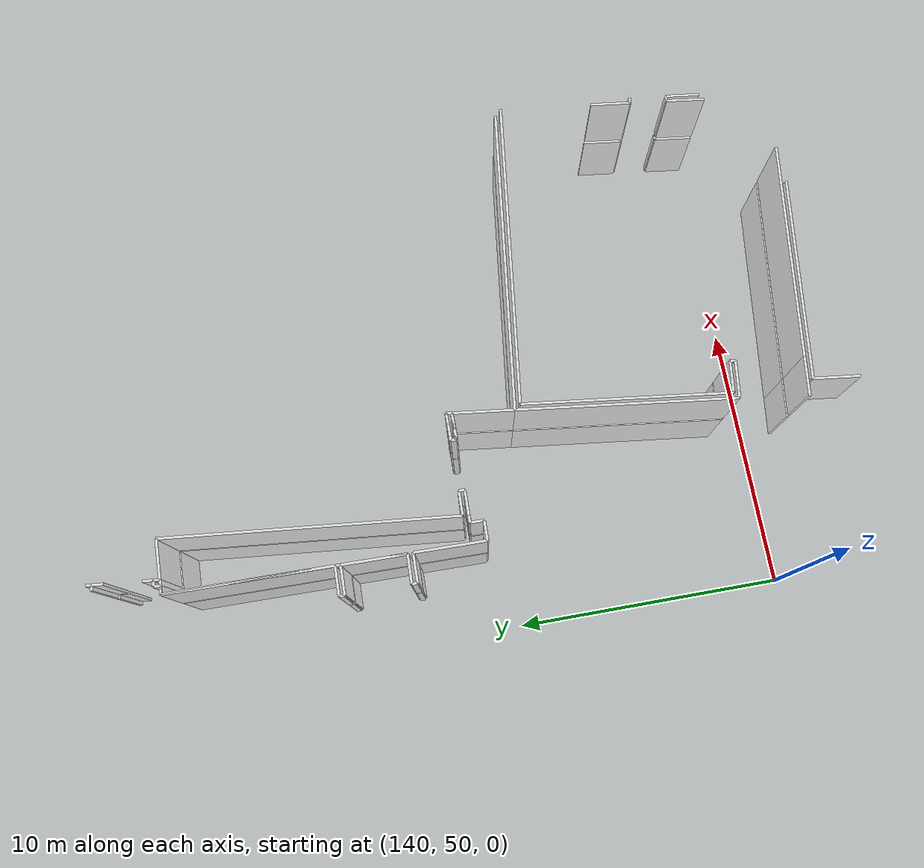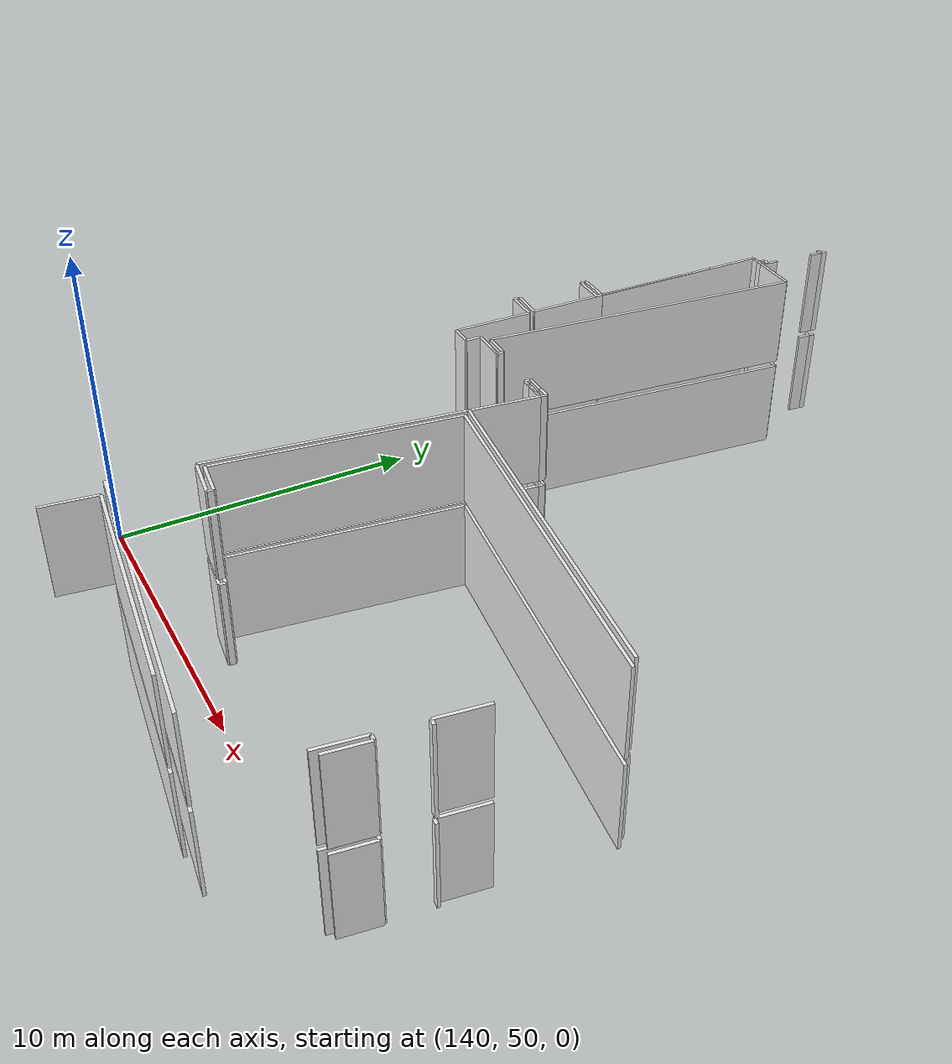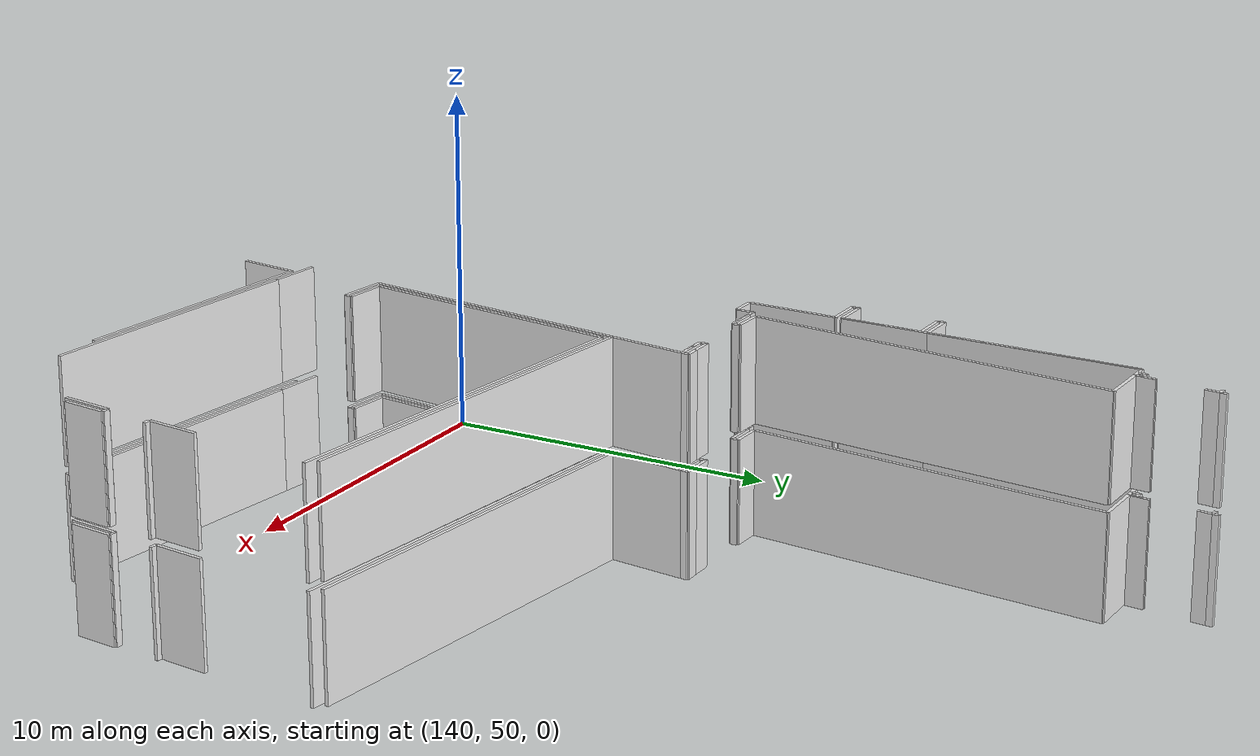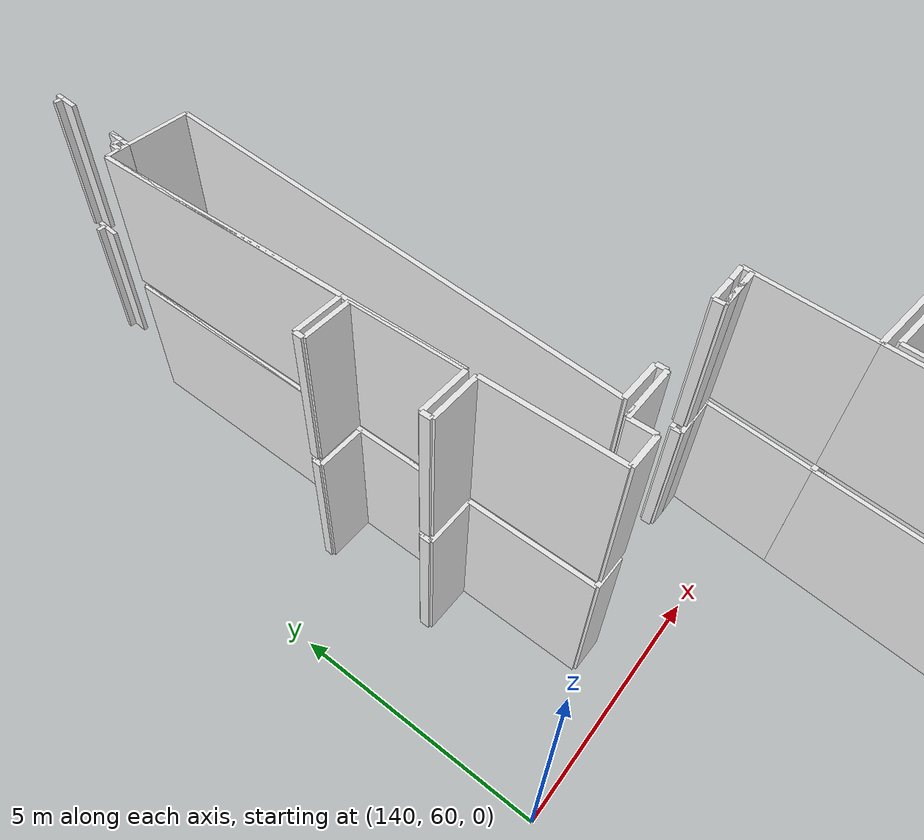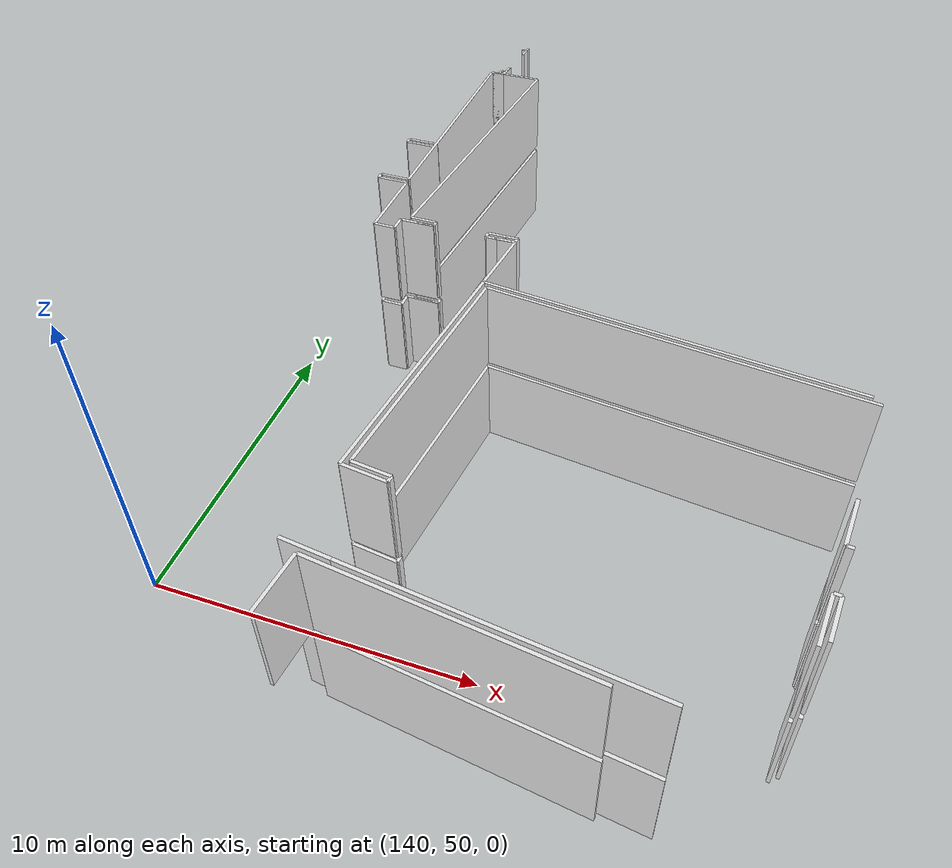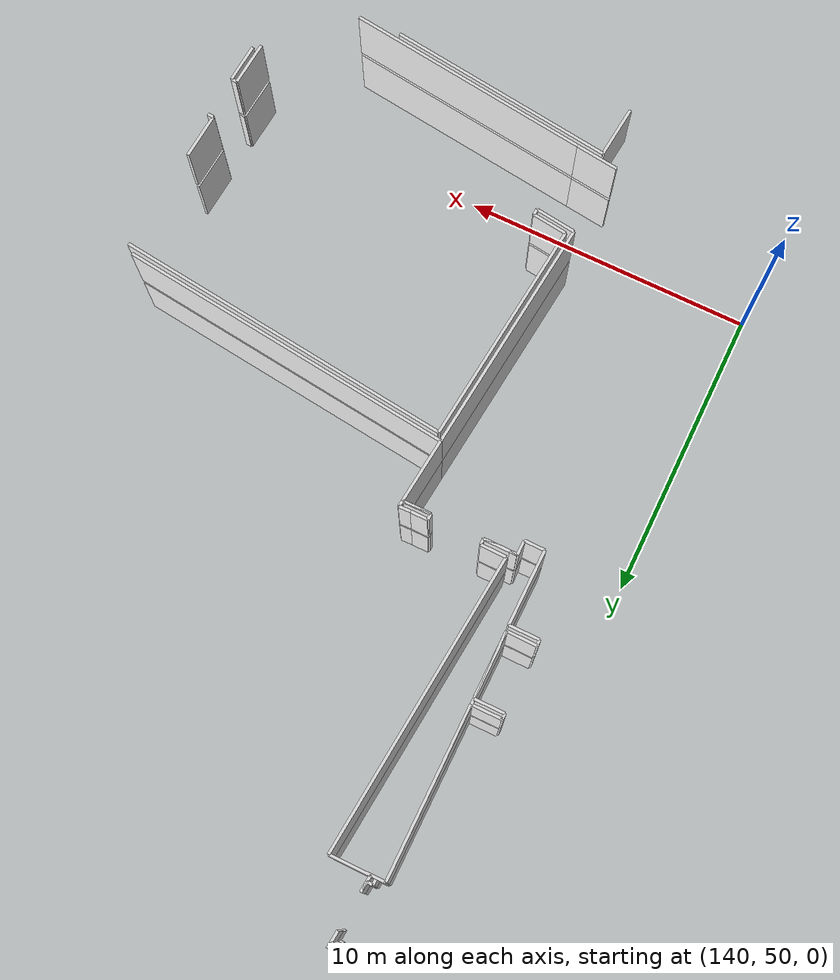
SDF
<sdf version="1.6">
 <world name="default">
  <model name="wall_150.1_48.1_0.0_link">
   <static>true</static>
   <pose>150.08499999999185 48.06499999994412 1.5 0 0 -0.11995117374483057</pose>
   <link name="link">
    <visual name="visual">
     <geometry><box><size>7.604643318400634 0.1 3</size></box></geometry>
     <material>
      <script><uri>file://media/materials/scripts/gazebo.material</uri><name>Gazebo/White</name></script>
     </material>
    </visual>
   </link>
  </model>
  <model name="wall_151.2_48.1_0.0_link">
   <static>true</static>
   <pose>151.21000000002095 48.13000000012107 1.5 0 0 3.021776205795211</pose>
   <link name="link">
    <visual name="visual">
     <geometry><box><size>8.198780397119496 0.1 3</size></box></geometry>
     <material>
      <script><uri>file://media/materials/scripts/gazebo.material</uri><name>Gazebo/White</name></script>
     </material>
    </visual>
   </link>
  </model>
  <model name="wall_147.5_51.2_0.0_link">
   <static>true</static>
   <pose>147.45000000001164 51.175000000046566 1.5 0 0 1.4659193879370842</pose>
   <link name="link">
    <visual name="visual">
     <geometry><box><size>0.19104973169180559 0.1 3</size></box></geometry>
     <material>
      <script><uri>file://media/materials/scripts/gazebo.material</uri><name>Gazebo/White</name></script>
     </material>
    </visual>
   </link>
  </model>
  <model name="wall_146.9_51.3_0.0_link">
   <static>true</static>
   <pose>146.88000000000466 51.34000000008382 1.5 0 0 3.0214839179154356</pose>
   <link name="link">
    <visual name="visual">
     <geometry><box><size>1.1684177335662667 0.1 3</size></box></geometry>
     <material>
      <script><uri>file://media/materials/scripts/gazebo.material</uri><name>Gazebo/White</name></script>
     </material>
    </visual>
   </link>
  </model>
  <model name="wall_146.8_55.2_0.0_link">
   <static>true</static>
   <pose>146.75500000000466 55.16500000003725 1.5 0 0 1.4502124243818328</pose>
   <link name="link">
    <visual name="visual">
     <geometry><box><size>7.564932253279079 0.1 3</size></box></geometry>
     <material>
      <script><uri>file://media/materials/scripts/gazebo.material</uri><name>Gazebo/White</name></script>
     </material>
    </visual>
   </link>
  </model>
  <model name="wall_152.9_58.2_0.0_link">
   <static>true</static>
   <pose>152.92500000001746 58.22999999998137 1.5 0 0 -0.12015333859032509</pose>
   <link name="link">
    <visual name="visual">
     <geometry><box><size>11.513005689199145 0.1 3</size></box></geometry>
     <material>
      <script><uri>file://media/materials/scripts/gazebo.material</uri><name>Gazebo/White</name></script>
     </material>
    </visual>
   </link>
  </model>
  <model name="wall_158.1_53.4_0.0_link">
   <static>true</static>
   <pose>158.13999999998487 53.389999999897555 1.5 0 0 -1.6918235466009592</pose>
   <link name="link">
    <visual name="visual">
     <geometry><box><size>1.4909057649436974 0.1 3</size></box></geometry>
     <material>
      <script><uri>file://media/materials/scripts/gazebo.material</uri><name>Gazebo/White</name></script>
     </material>
    </visual>
   </link>
  </model>
  <model name="wall_158.1_52.6_0.0_link">
   <static>true</static>
   <pose>158.14999999999418 52.639999999897555 1.5 0 0 -0.09966865257760905</pose>
   <link name="link">
    <visual name="visual">
     <geometry><box><size>0.20099751243585498 0.1 3</size></box></geometry>
     <material>
      <script><uri>file://media/materials/scripts/gazebo.material</uri><name>Gazebo/White</name></script>
     </material>
    </visual>
   </link>
  </model>
  <model name="wall_158.0_51.3_0.0_link">
   <static>true</static>
   <pose>157.98500000001513 51.26000000000931 1.5 0 0 3.0367157147638757</pose>
   <link name="link">
    <visual name="visual">
     <geometry><box><size>0.19104973174969345 0.1 3</size></box></geometry>
     <material>
      <script><uri>file://media/materials/scripts/gazebo.material</uri><name>Gazebo/White</name></script>
     </material>
    </visual>
   </link>
  </model>
  <model name="wall_157.8_50.6_0.0_link">
   <static>true</static>
   <pose>157.80000000001746 50.55499999993481 1.5 0 0 -1.6960119063078065</pose>
   <link name="link">
    <visual name="visual">
     <geometry><box><size>1.4412841498042397 0.1 3</size></box></geometry>
     <material>
      <script><uri>file://media/materials/scripts/gazebo.material</uri><name>Gazebo/White</name></script>
     </material>
    </visual>
   </link>
  </model>
  <model name="wall_158.0_50.6_0.0_link">
   <static>true</static>
   <pose>158.00500000000466 50.62999999988824 1.5 0 0 -1.6911791475924711</pose>
   <link name="link">
    <visual name="visual">
     <geometry><box><size>1.2490396313013081 0.1 3</size></box></geometry>
     <material>
      <script><uri>file://media/materials/scripts/gazebo.material</uri><name>Gazebo/White</name></script>
     </material>
    </visual>
   </link>
  </model>
  <model name="wall_142.2_63.7_0.0_link">
   <static>true</static>
   <pose>142.2049999999872 63.670000000158325 1.5 0 0 -0.01941503592096556</pose>
   <link name="link">
    <visual name="visual">
     <geometry><box><size>1.0301941564279975 0.1 3</size></box></geometry>
     <material>
      <script><uri>file://media/materials/scripts/gazebo.material</uri><name>Gazebo/White</name></script>
     </material>
    </visual>
   </link>
  </model>
  <model name="wall_142.7_64.8_0.0_link">
   <static>true</static>
   <pose>142.73499999998603 64.81000000005588 1.5 0 0 1.5577535881510873</pose>
   <link name="link">
    <visual name="visual">
     <geometry><box><size>2.3001956436670468 0.1 3</size></box></geometry>
     <material>
      <script><uri>file://media/materials/scripts/gazebo.material</uri><name>Gazebo/White</name></script>
     </material>
    </visual>
   </link>
  </model>
  <model name="wall_142.2_66.0_0.0_link">
   <static>true</static>
   <pose>142.23000000001048 65.96500000008382 1.5 0 0 3.131977565057088</pose>
   <link name="link">
    <visual name="visual">
     <geometry><box><size>1.0400480757932573 0.1 3</size></box></geometry>
     <material>
      <script><uri>file://media/materials/scripts/gazebo.material</uri><name>Gazebo/White</name></script>
     </material>
    </visual>
   </link>
  </model>
  <model name="wall_141.7_66.1_0.0_link">
   <static>true</static>
   <pose>141.7149999999965 66.06500000017695 1.5 0 0 1.5182132654251468</pose>
   <link name="link">
    <visual name="visual">
     <geometry><box><size>0.19026297584603252 0.1 3</size></box></geometry>
     <material>
      <script><uri>file://media/materials/scripts/gazebo.material</uri><name>Gazebo/White</name></script>
     </material>
    </visual>
   </link>
  </model>
  <model name="wall_142.2_66.2_0.0_link">
   <static>true</static>
   <pose>142.2399999999907 66.15500000002794 1.5 0 0 -0.009615088532167242</pose>
   <link name="link">
    <visual name="visual">
     <geometry><box><size>1.0400480758514623 0.1 3</size></box></geometry>
     <material>
      <script><uri>file://media/materials/scripts/gazebo.material</uri><name>Gazebo/White</name></script>
     </material>
    </visual>
   </link>
  </model>
  <model name="wall_142.8_69.1_0.0_link">
   <static>true</static>
   <pose>142.7950000000128 69.10499999998137 1.5 0 0 1.5589525489794016</pose>
   <link name="link">
    <visual name="visual">
     <geometry><box><size>5.910414537218375 0.1 3</size></box></geometry>
     <material>
      <script><uri>file://media/materials/scripts/gazebo.material</uri><name>Gazebo/White</name></script>
     </material>
    </visual>
   </link>
  </model>
  <model name="wall_143.0_72.1_0.0_link">
   <static>true</static>
   <pose>142.98000000001048 72.06000000005588 1.5 0 0 0.0</pose>
   <link name="link">
    <visual name="visual">
     <geometry><box><size>0.29999999998835847 0.1 3</size></box></geometry>
     <material>
      <script><uri>file://media/materials/scripts/gazebo.material</uri><name>Gazebo/White</name></script>
     </material>
    </visual>
   </link>
  </model>
  <model name="wall_143.1_72.2_0.0_link">
   <static>true</static>
   <pose>143.14000000001397 72.17999999993481 1.5 0 0 1.4876550947458824</pose>
   <link name="link">
    <visual name="visual">
     <geometry><box><size>0.24083189133608532 0.1 3</size></box></geometry>
     <material>
      <script><uri>file://media/materials/scripts/gazebo.material</uri><name>Gazebo/White</name></script>
     </material>
    </visual>
   </link>
  </model>
  <model name="wall_143.2_72.3_0.0_link">
   <static>true</static>
   <pose>143.25 72.28999999980442 1.5 0 0 -0.09966865260642473</pose>
   <link name="link">
    <visual name="visual">
     <geometry><box><size>0.20099751237793617 0.1 3</size></box></geometry>
     <material>
      <script><uri>file://media/materials/scripts/gazebo.material</uri><name>Gazebo/White</name></script>
     </material>
    </visual>
   </link>
  </model>
  <model name="wall_143.4_72.5_0.0_link">
   <static>true</static>
   <pose>143.36999999999534 72.45999999996275 1.5 0 0 1.460139105621001</pose>
   <link name="link">
    <visual name="visual">
     <geometry><box><size>0.36221540586283607 0.1 3</size></box></geometry>
     <material>
      <script><uri>file://media/materials/scripts/gazebo.material</uri><name>Gazebo/White</name></script>
     </material>
    </visual>
   </link>
  </model>
  <model name="wall_143.5_74.2_0.0_link">
   <static>true</static>
   <pose>143.54000000000815 74.15500000002794 1.5 0 0 1.4735431285193206</pose>
   <link name="link">
    <visual name="visual">
     <geometry><box><size>0.41194659816373147 0.1 3</size></box></geometry>
     <material>
      <script><uri>file://media/materials/scripts/gazebo.material</uri><name>Gazebo/White</name></script>
     </material>
    </visual>
   </link>
  </model>
  <model name="wall_143.5_74.4_0.0_link">
   <static>true</static>
   <pose>143.45999999999185 74.36499999999069 1.5 0 0 3.0916342566630535</pose>
   <link name="link">
    <visual name="visual">
     <geometry><box><size>0.20024984396872697 0.1 3</size></box></geometry>
     <material>
      <script><uri>file://media/materials/scripts/gazebo.material</uri><name>Gazebo/White</name></script>
     </material>
    </visual>
   </link>
  </model>
  <model name="wall_146.5_61.3_0.0_link">
   <static>true</static>
   <pose>146.5349999999744 61.34499999997206 1.5 0 0 -0.02702044984156988</pose>
   <link name="link">
    <visual name="visual">
     <geometry><box><size>0.37013511046832204 0.1 3</size></box></geometry>
     <material>
      <script><uri>file://media/materials/scripts/gazebo.material</uri><name>Gazebo/White</name></script>
     </material>
    </visual>
   </link>
  </model>
  <model name="wall_147.0_61.3_0.0_link">
   <static>true</static>
   <pose>147.01499999998487 61.34499999997206 1.5 0 0 0.016947530215964846</pose>
   <link name="link">
    <visual name="visual">
     <geometry><box><size>0.5900847397069884 0.1 3</size></box></geometry>
     <material>
      <script><uri>file://media/materials/scripts/gazebo.material</uri><name>Gazebo/White</name></script>
     </material>
    </visual>
   </link>
  </model>
  <model name="wall_147.2_60.2_0.0_link">
   <static>true</static>
   <pose>147.17499999998836 60.24500000011176 1.5 0 0 -1.6923658132359836</pose>
   <link name="link">
    <visual name="visual">
     <geometry><box><size>2.226432123341154 0.1 3</size></box></geometry>
     <material>
      <script><uri>file://media/materials/scripts/gazebo.material</uri><name>Gazebo/White</name></script>
     </material>
    </visual>
   </link>
  </model>
  <model name="wall_146.6_55.2_0.0_link">
   <static>true</static>
   <pose>146.55999999999767 55.19500000006519 1.5 0 0 -1.6918741795088168</pose>
   <link name="link">
    <visual name="visual">
     <geometry><box><size>7.9481884729783525 0.1 3</size></box></geometry>
     <material>
      <script><uri>file://media/materials/scripts/gazebo.material</uri><name>Gazebo/White</name></script>
     </material>
    </visual>
   </link>
  </model>
  <model name="wall_146.8_51.2_0.0_link">
   <static>true</static>
   <pose>146.7600000000093 51.16500000003725 1.5 0 0 -0.12435499449408483</pose>
   <link name="link">
    <visual name="visual">
     <geometry><box><size>1.37058381718765 0.1 3</size></box></geometry>
     <material>
      <script><uri>file://media/materials/scripts/gazebo.material</uri><name>Gazebo/White</name></script>
     </material>
    </visual>
   </link>
  </model>
  <model name="wall_146.4_48.7_0.0_link">
   <static>true</static>
   <pose>146.42500000001746 48.705000000074506 1.5 0 0 3.0232668711350636</pose>
   <link name="link">
    <visual name="visual">
     <geometry><box><size>1.440069442754304 0.1 3</size></box></geometry>
     <material>
      <script><uri>file://media/materials/scripts/gazebo.material</uri><name>Gazebo/White</name></script>
     </material>
    </visual>
   </link>
  </model>
  <model name="wall_141.7_63.6_0.0_link">
   <static>true</static>
   <pose>141.69000000000233 63.580000000074506 1.5 0 0 -1.5707963267948966</pose>
   <link name="link">
    <visual name="visual">
     <geometry><box><size>0.20000000018626451 0.1 3</size></box></geometry>
     <material>
      <script><uri>file://media/materials/scripts/gazebo.material</uri><name>Gazebo/White</name></script>
     </material>
    </visual>
   </link>
  </model>
  <model name="wall_142.2_63.5_0.0_link">
   <static>true</static>
   <pose>142.20999999999185 63.47500000009313 1.5 0 0 -0.00961508808499551</pose>
   <link name="link">
    <visual name="visual">
     <geometry><box><size>1.04004807578878 0.1 3</size></box></geometry>
     <material>
      <script><uri>file://media/materials/scripts/gazebo.material</uri><name>Gazebo/White</name></script>
     </material>
    </visual>
   </link>
  </model>
  <model name="wall_142.7_62.2_0.0_link">
   <static>true</static>
   <pose>142.70999999999185 62.18500000005588 1.5 0 0 -1.5863592725219522</pose>
   <link name="link">
    <visual name="visual">
     <geometry><box><size>2.570311265494933 0.1 3</size></box></geometry>
     <material>
      <script><uri>file://media/materials/scripts/gazebo.material</uri><name>Gazebo/White</name></script>
     </material>
    </visual>
   </link>
  </model>
  <model name="wall_143.0_60.9_0.0_link">
   <static>true</static>
   <pose>143.04000000000815 60.89500000001863 1.5 0 0 -0.014284742267913651</pose>
   <link name="link">
    <visual name="visual">
     <geometry><box><size>0.7000714249359331 0.1 3</size></box></geometry>
     <material>
      <script><uri>file://media/materials/scripts/gazebo.material</uri><name>Gazebo/White</name></script>
     </material>
    </visual>
   </link>
  </model>
  <model name="wall_143.4_61.1_0.0_link">
   <static>true</static>
   <pose>143.39500000001863 61.13500000000931 1.5 0 0 1.550390996079279</pose>
   <link name="link">
    <visual name="visual">
     <geometry><box><size>0.4901020299518104 0.1 3</size></box></geometry>
     <material>
      <script><uri>file://media/materials/scripts/gazebo.material</uri><name>Gazebo/White</name></script>
     </material>
    </visual>
   </link>
  </model>
  <model name="wall_143.5_61.4_0.0_link">
   <static>true</static>
   <pose>143.52500000002328 61.37999999988824 1.5 0 0 0.0</pose>
   <link name="link">
    <visual name="visual">
     <geometry><box><size>0.25 0.1 3</size></box></geometry>
     <material>
      <script><uri>file://media/materials/scripts/gazebo.material</uri><name>Gazebo/White</name></script>
     </material>
    </visual>
   </link>
  </model>
  <model name="wall_144.1_61.4_0.0_link">
   <static>true</static>
   <pose>144.10000000000582 61.375 1.5 0 0 -0.011110653649716558</pose>
   <link name="link">
    <visual name="visual">
     <geometry><box><size>0.9000555538035779 0.1 3</size></box></geometry>
     <material>
      <script><uri>file://media/materials/scripts/gazebo.material</uri><name>Gazebo/White</name></script>
     </material>
    </visual>
   </link>
  </model>
  <model name="wall_152.7_58.5_0.0_link">
   <static>true</static>
   <pose>152.7149999999965 58.45999999996275 1.5 0 0 3.022337441191368</pose>
   <link name="link">
    <visual name="visual">
     <geometry><box><size>11.431189789418454 0.1 3</size></box></geometry>
     <material>
      <script><uri>file://media/materials/scripts/gazebo.material</uri><name>Gazebo/White</name></script>
     </material>
    </visual>
   </link>
  </model>
  <model name="wall_147.3_61.4_0.0_link">
   <static>true</static>
   <pose>147.32500000001164 61.449999999953434 1.5 0 0 1.4219063788438384</pose>
   <link name="link">
    <visual name="visual">
     <geometry><box><size>0.2022374838894058 0.1 3</size></box></geometry>
     <material>
      <script><uri>file://media/materials/scripts/gazebo.material</uri><name>Gazebo/White</name></script>
     </material>
    </visual>
   </link>
  </model>
  <model name="wall_147.1_61.5_0.0_link">
   <static>true</static>
   <pose>147.14000000001397 61.544999999925494 1.5 0 0 -3.116597860530772</pose>
   <link name="link">
    <visual name="visual">
     <geometry><box><size>0.40012498049254075 0.1 3</size></box></geometry>
     <material>
      <script><uri>file://media/materials/scripts/gazebo.material</uri><name>Gazebo/White</name></script>
     </material>
    </visual>
   </link>
  </model>
  <model name="wall_146.6_61.5_0.0_link">
   <static>true</static>
   <pose>146.64499999998952 61.544999999925494 1.5 0 0 3.1246451241628583</pose>
   <link name="link">
    <visual name="visual">
     <geometry><box><size>0.590084739699097 0.1 3</size></box></geometry>
     <material>
      <script><uri>file://media/materials/scripts/gazebo.material</uri><name>Gazebo/White</name></script>
     </material>
    </visual>
   </link>
  </model>
  <model name="wall_146.3_61.4_0.0_link">
   <static>true</static>
   <pose>146.34999999997672 61.449999999953434 1.5 0 0 -1.5707963267948966</pose>
   <link name="link">
    <visual name="visual">
     <geometry><box><size>0.19999999972060323 0.1 3</size></box></geometry>
     <material>
      <script><uri>file://media/materials/scripts/gazebo.material</uri><name>Gazebo/White</name></script>
     </material>
    </visual>
   </link>
  </model>
  <model name="wall_144.5_61.5_0.0_link">
   <static>true</static>
   <pose>144.54999999998836 61.46999999997206 1.5 0 0 1.5707963267948966</pose>
   <link name="link">
    <visual name="visual">
     <geometry><box><size>0.19999999972060323 0.1 3</size></box></geometry>
     <material>
      <script><uri>file://media/materials/scripts/gazebo.material</uri><name>Gazebo/White</name></script>
     </material>
    </visual>
   </link>
  </model>
  <model name="wall_144.1_61.6_0.0_link">
   <static>true</static>
   <pose>144.1149999999907 61.579999999841675 1.5 0 0 3.1186081961268197</pose>
   <link name="link">
    <visual name="visual">
     <geometry><box><size>0.8702298546893473 0.1 3</size></box></geometry>
     <material>
      <script><uri>file://media/materials/scripts/gazebo.material</uri><name>Gazebo/White</name></script>
     </material>
    </visual>
   </link>
  </model>
  <model name="wall_144.2_66.8_0.0_link">
   <static>true</static>
   <pose>144.20999999999185 66.81499999994412 1.5 0 0 1.469706682461873</pose>
   <link name="link">
    <visual name="visual">
     <geometry><box><size>10.503623184591495 0.1 3</size></box></geometry>
     <material>
      <script><uri>file://media/materials/scripts/gazebo.material</uri><name>Gazebo/White</name></script>
     </material>
    </visual>
   </link>
  </model>
  <model name="wall_144.0_72.1_0.0_link">
   <static>true</static>
   <pose>144.0350000000035 72.05000000004657 1.5 0 0 3.1274092075850195</pose>
   <link name="link">
    <visual name="visual">
     <geometry><box><size>1.4101418368123546 0.1 3</size></box></geometry>
     <material>
      <script><uri>file://media/materials/scripts/gazebo.material</uri><name>Gazebo/White</name></script>
     </material>
    </visual>
   </link>
  </model>
  <model name="wall_143.3_72.2_0.0_link">
   <static>true</static>
   <pose>143.3399999999965 72.1699999999255 1.5 0 0 1.4801364396657184</pose>
   <link name="link">
    <visual name="visual">
     <geometry><box><size>0.22090722008046232 0.1 3</size></box></geometry>
     <material>
      <script><uri>file://media/materials/scripts/gazebo.material</uri><name>Gazebo/White</name></script>
     </material>
    </visual>
   </link>
  </model>
  <model name="wall_143.6_74.5_0.0_link">
   <static>true</static>
   <pose>143.57000000000698 74.45499999984168 1.5 0 0 1.4659193879370842</pose>
   <link name="link">
    <visual name="visual">
     <geometry><box><size>0.19104973169180559 0.1 3</size></box></geometry>
     <material>
      <script><uri>file://media/materials/scripts/gazebo.material</uri><name>Gazebo/White</name></script>
     </material>
    </visual>
   </link>
  </model>
  <model name="wall_144.0_61.4_0.0_link">
   <static>true</static>
   <pose>143.97500000000582 61.375 1.5 0 0 -0.008695432817694347</pose>
   <link name="link">
    <visual name="visual">
     <geometry><box><size>1.1500434774021384 0.1 3</size></box></geometry>
     <material>
      <script><uri>file://media/materials/scripts/gazebo.material</uri><name>Gazebo/White</name></script>
     </material>
    </visual>
   </link>
  </model>
  <model name="wall_146.8_61.4_0.0_link">
   <static>true</static>
   <pose>146.8299999999872 61.35000000009313 1.5 0 0 0.0</pose>
   <link name="link">
    <visual name="visual">
     <geometry><box><size>0.9600000000209548 0.1 3</size></box></geometry>
     <material>
      <script><uri>file://media/materials/scripts/gazebo.material</uri><name>Gazebo/White</name></script>
     </material>
    </visual>
   </link>
  </model>
  <model name="wall_143.4_72.4_0.0_link">
   <static>true</static>
   <pose>143.36000000001513 72.35000000009313 1.5 0 0 -1.673877935300477</pose>
   <link name="link">
    <visual name="visual">
     <geometry><box><size>0.5830951895584008 0.1 3</size></box></geometry>
     <material>
      <script><uri>file://media/materials/scripts/gazebo.material</uri><name>Gazebo/White</name></script>
     </material>
    </visual>
   </link>
  </model>
  <model name="wall_143.1_72.1_0.0_link">
   <static>true</static>
   <pose>143.0800000000163 72.06000000005588 1.5 0 0 3.141592653589793</pose>
   <link name="link">
    <visual name="visual">
     <geometry><box><size>0.5 0.1 3</size></box></geometry>
     <material>
      <script><uri>file://media/materials/scripts/gazebo.material</uri><name>Gazebo/White</name></script>
     </material>
    </visual>
   </link>
  </model>
  <model name="wall_142.8_67.9_0.0_link">
   <static>true</static>
   <pose>142.77499999999418 67.86000000010245 1.5 0 0 -1.5838908164257817</pose>
   <link name="link">
    <visual name="visual">
     <geometry><box><size>8.400720207127787 0.1 3</size></box></geometry>
     <material>
      <script><uri>file://media/materials/scripts/gazebo.material</uri><name>Gazebo/White</name></script>
     </material>
    </visual>
   </link>
  </model>
  <model name="wall_146.2_47.7_3.2_link">
   <static>true</static>
   <pose>146.20999999999185 47.675000000046566 4.7 0 0 1.4530010049136584</pose>
   <link name="link">
    <visual name="visual">
     <geometry><box><size>1.7017931718677757 0.1 3</size></box></geometry>
     <material>
      <script><uri>file://media/materials/scripts/gazebo.material</uri><name>Gazebo/White</name></script>
     </material>
    </visual>
   </link>
  </model>
  <model name="wall_150.1_48.1_3.2_link">
   <static>true</static>
   <pose>150.08499999999185 48.06499999994412 4.7 0 0 -0.11995117374483057</pose>
   <link name="link">
    <visual name="visual">
     <geometry><box><size>7.604643318400634 0.1 3</size></box></geometry>
     <material>
      <script><uri>file://media/materials/scripts/gazebo.material</uri><name>Gazebo/White</name></script>
     </material>
    </visual>
   </link>
  </model>
  <model name="wall_151.2_48.1_3.2_link">
   <static>true</static>
   <pose>151.21000000002095 48.13000000012107 4.7 0 0 3.021776205795211</pose>
   <link name="link">
    <visual name="visual">
     <geometry><box><size>8.198780397119496 0.1 3</size></box></geometry>
     <material>
      <script><uri>file://media/materials/scripts/gazebo.material</uri><name>Gazebo/White</name></script>
     </material>
    </visual>
   </link>
  </model>
  <model name="wall_147.5_51.2_3.2_link">
   <static>true</static>
   <pose>147.45000000001164 51.175000000046566 4.7 0 0 1.4659193879370842</pose>
   <link name="link">
    <visual name="visual">
     <geometry><box><size>0.19104973169180559 0.1 3</size></box></geometry>
     <material>
      <script><uri>file://media/materials/scripts/gazebo.material</uri><name>Gazebo/White</name></script>
     </material>
    </visual>
   </link>
  </model>
  <model name="wall_146.9_51.3_3.2_link">
   <static>true</static>
   <pose>146.88000000000466 51.34000000008382 4.7 0 0 3.0214839179154356</pose>
   <link name="link">
    <visual name="visual">
     <geometry><box><size>1.1684177335662667 0.1 3</size></box></geometry>
     <material>
      <script><uri>file://media/materials/scripts/gazebo.material</uri><name>Gazebo/White</name></script>
     </material>
    </visual>
   </link>
  </model>
  <model name="wall_146.8_55.2_3.2_link">
   <static>true</static>
   <pose>146.75500000000466 55.16500000003725 4.7 0 0 1.4502124243818328</pose>
   <link name="link">
    <visual name="visual">
     <geometry><box><size>7.564932253279079 0.1 3</size></box></geometry>
     <material>
      <script><uri>file://media/materials/scripts/gazebo.material</uri><name>Gazebo/White</name></script>
     </material>
    </visual>
   </link>
  </model>
  <model name="wall_152.9_58.2_3.2_link">
   <static>true</static>
   <pose>152.92500000001746 58.22999999998137 4.7 0 0 -0.12015333859032509</pose>
   <link name="link">
    <visual name="visual">
     <geometry><box><size>11.513005689199145 0.1 3</size></box></geometry>
     <material>
      <script><uri>file://media/materials/scripts/gazebo.material</uri><name>Gazebo/White</name></script>
     </material>
    </visual>
   </link>
  </model>
  <model name="wall_158.1_53.4_3.2_link">
   <static>true</static>
   <pose>158.13999999998487 53.389999999897555 4.7 0 0 -1.6918235466009592</pose>
   <link name="link">
    <visual name="visual">
     <geometry><box><size>1.4909057649436974 0.1 3</size></box></geometry>
     <material>
      <script><uri>file://media/materials/scripts/gazebo.material</uri><name>Gazebo/White</name></script>
     </material>
    </visual>
   </link>
  </model>
  <model name="wall_158.1_52.6_3.2_link">
   <static>true</static>
   <pose>158.14999999999418 52.639999999897555 4.7 0 0 -0.09966865257760905</pose>
   <link name="link">
    <visual name="visual">
     <geometry><box><size>0.20099751243585498 0.1 3</size></box></geometry>
     <material>
      <script><uri>file://media/materials/scripts/gazebo.material</uri><name>Gazebo/White</name></script>
     </material>
    </visual>
   </link>
  </model>
  <model name="wall_158.0_51.3_3.2_link">
   <static>true</static>
   <pose>157.98500000001513 51.26000000000931 4.7 0 0 3.0367157147638757</pose>
   <link name="link">
    <visual name="visual">
     <geometry><box><size>0.19104973174969345 0.1 3</size></box></geometry>
     <material>
      <script><uri>file://media/materials/scripts/gazebo.material</uri><name>Gazebo/White</name></script>
     </material>
    </visual>
   </link>
  </model>
  <model name="wall_157.8_50.6_3.2_link">
   <static>true</static>
   <pose>157.80000000001746 50.55499999993481 4.7 0 0 -1.6960119063078065</pose>
   <link name="link">
    <visual name="visual">
     <geometry><box><size>1.4412841498042397 0.1 3</size></box></geometry>
     <material>
      <script><uri>file://media/materials/scripts/gazebo.material</uri><name>Gazebo/White</name></script>
     </material>
    </visual>
   </link>
  </model>
  <model name="wall_158.0_50.6_3.2_link">
   <static>true</static>
   <pose>158.00500000000466 50.62999999988824 4.7 0 0 -1.6911791475924711</pose>
   <link name="link">
    <visual name="visual">
     <geometry><box><size>1.2490396313013081 0.1 3</size></box></geometry>
     <material>
      <script><uri>file://media/materials/scripts/gazebo.material</uri><name>Gazebo/White</name></script>
     </material>
    </visual>
   </link>
  </model>
  <model name="wall_142.2_63.7_3.2_link">
   <static>true</static>
   <pose>142.2049999999872 63.670000000158325 4.7 0 0 -0.01941503592096556</pose>
   <link name="link">
    <visual name="visual">
     <geometry><box><size>1.0301941564279975 0.1 3</size></box></geometry>
     <material>
      <script><uri>file://media/materials/scripts/gazebo.material</uri><name>Gazebo/White</name></script>
     </material>
    </visual>
   </link>
  </model>
  <model name="wall_142.7_64.8_3.2_link">
   <static>true</static>
   <pose>142.73499999998603 64.81000000005588 4.7 0 0 1.5577535881510873</pose>
   <link name="link">
    <visual name="visual">
     <geometry><box><size>2.3001956436670468 0.1 3</size></box></geometry>
     <material>
      <script><uri>file://media/materials/scripts/gazebo.material</uri><name>Gazebo/White</name></script>
     </material>
    </visual>
   </link>
  </model>
  <model name="wall_142.2_66.0_3.2_link">
   <static>true</static>
   <pose>142.23000000001048 65.96500000008382 4.7 0 0 3.131977565057088</pose>
   <link name="link">
    <visual name="visual">
     <geometry><box><size>1.0400480757932573 0.1 3</size></box></geometry>
     <material>
      <script><uri>file://media/materials/scripts/gazebo.material</uri><name>Gazebo/White</name></script>
     </material>
    </visual>
   </link>
  </model>
  <model name="wall_141.7_66.1_3.2_link">
   <static>true</static>
   <pose>141.7149999999965 66.06500000017695 4.7 0 0 1.5182132654251468</pose>
   <link name="link">
    <visual name="visual">
     <geometry><box><size>0.19026297584603252 0.1 3</size></box></geometry>
     <material>
      <script><uri>file://media/materials/scripts/gazebo.material</uri><name>Gazebo/White</name></script>
     </material>
    </visual>
   </link>
  </model>
  <model name="wall_142.2_66.2_3.2_link">
   <static>true</static>
   <pose>142.2399999999907 66.15500000002794 4.7 0 0 -0.009615088532167242</pose>
   <link name="link">
    <visual name="visual">
     <geometry><box><size>1.0400480758514623 0.1 3</size></box></geometry>
     <material>
      <script><uri>file://media/materials/scripts/gazebo.material</uri><name>Gazebo/White</name></script>
     </material>
    </visual>
   </link>
  </model>
  <model name="wall_142.8_69.1_3.2_link">
   <static>true</static>
   <pose>142.7950000000128 69.10499999998137 4.7 0 0 1.5589525489794016</pose>
   <link name="link">
    <visual name="visual">
     <geometry><box><size>5.910414537218375 0.1 3</size></box></geometry>
     <material>
      <script><uri>file://media/materials/scripts/gazebo.material</uri><name>Gazebo/White</name></script>
     </material>
    </visual>
   </link>
  </model>
  <model name="wall_143.0_72.1_3.2_link">
   <static>true</static>
   <pose>142.98000000001048 72.06000000005588 4.7 0 0 0.0</pose>
   <link name="link">
    <visual name="visual">
     <geometry><box><size>0.29999999998835847 0.1 3</size></box></geometry>
     <material>
      <script><uri>file://media/materials/scripts/gazebo.material</uri><name>Gazebo/White</name></script>
     </material>
    </visual>
   </link>
  </model>
  <model name="wall_143.1_72.2_3.2_link">
   <static>true</static>
   <pose>143.14000000001397 72.17999999993481 4.7 0 0 1.4876550947458824</pose>
   <link name="link">
    <visual name="visual">
     <geometry><box><size>0.24083189133608532 0.1 3</size></box></geometry>
     <material>
      <script><uri>file://media/materials/scripts/gazebo.material</uri><name>Gazebo/White</name></script>
     </material>
    </visual>
   </link>
  </model>
  <model name="wall_143.2_72.3_3.2_link">
   <static>true</static>
   <pose>143.25 72.28999999980442 4.7 0 0 -0.09966865260642473</pose>
   <link name="link">
    <visual name="visual">
     <geometry><box><size>0.20099751237793617 0.1 3</size></box></geometry>
     <material>
      <script><uri>file://media/materials/scripts/gazebo.material</uri><name>Gazebo/White</name></script>
     </material>
    </visual>
   </link>
  </model>
  <model name="wall_143.4_72.5_3.2_link">
   <static>true</static>
   <pose>143.36999999999534 72.45999999996275 4.7 0 0 1.460139105621001</pose>
   <link name="link">
    <visual name="visual">
     <geometry><box><size>0.36221540586283607 0.1 3</size></box></geometry>
     <material>
      <script><uri>file://media/materials/scripts/gazebo.material</uri><name>Gazebo/White</name></script>
     </material>
    </visual>
   </link>
  </model>
  <model name="wall_143.5_74.2_3.2_link">
   <static>true</static>
   <pose>143.54000000000815 74.15500000002794 4.7 0 0 1.4735431285193206</pose>
   <link name="link">
    <visual name="visual">
     <geometry><box><size>0.41194659816373147 0.1 3</size></box></geometry>
     <material>
      <script><uri>file://media/materials/scripts/gazebo.material</uri><name>Gazebo/White</name></script>
     </material>
    </visual>
   </link>
  </model>
  <model name="wall_143.5_74.4_3.2_link">
   <static>true</static>
   <pose>143.45999999999185 74.36499999999069 4.7 0 0 3.0916342566630535</pose>
   <link name="link">
    <visual name="visual">
     <geometry><box><size>0.20024984396872697 0.1 3</size></box></geometry>
     <material>
      <script><uri>file://media/materials/scripts/gazebo.material</uri><name>Gazebo/White</name></script>
     </material>
    </visual>
   </link>
  </model>
  <model name="wall_146.5_61.3_3.2_link">
   <static>true</static>
   <pose>146.5349999999744 61.34499999997206 4.7 0 0 -0.02702044984156988</pose>
   <link name="link">
    <visual name="visual">
     <geometry><box><size>0.37013511046832204 0.1 3</size></box></geometry>
     <material>
      <script><uri>file://media/materials/scripts/gazebo.material</uri><name>Gazebo/White</name></script>
     </material>
    </visual>
   </link>
  </model>
  <model name="wall_147.0_61.3_3.2_link">
   <static>true</static>
   <pose>147.01499999998487 61.34499999997206 4.7 0 0 0.016947530215964846</pose>
   <link name="link">
    <visual name="visual">
     <geometry><box><size>0.5900847397069884 0.1 3</size></box></geometry>
     <material>
      <script><uri>file://media/materials/scripts/gazebo.material</uri><name>Gazebo/White</name></script>
     </material>
    </visual>
   </link>
  </model>
  <model name="wall_147.2_60.2_3.2_link">
   <static>true</static>
   <pose>147.17499999998836 60.24500000011176 4.7 0 0 -1.6923658132359836</pose>
   <link name="link">
    <visual name="visual">
     <geometry><box><size>2.226432123341154 0.1 3</size></box></geometry>
     <material>
      <script><uri>file://media/materials/scripts/gazebo.material</uri><name>Gazebo/White</name></script>
     </material>
    </visual>
   </link>
  </model>
  <model name="wall_146.6_55.2_3.2_link">
   <static>true</static>
   <pose>146.55999999999767 55.19500000006519 4.7 0 0 -1.6918741795088168</pose>
   <link name="link">
    <visual name="visual">
     <geometry><box><size>7.9481884729783525 0.1 3</size></box></geometry>
     <material>
      <script><uri>file://media/materials/scripts/gazebo.material</uri><name>Gazebo/White</name></script>
     </material>
    </visual>
   </link>
  </model>
  <model name="wall_146.8_51.2_3.2_link">
   <static>true</static>
   <pose>146.7600000000093 51.16500000003725 4.7 0 0 -0.12435499449408483</pose>
   <link name="link">
    <visual name="visual">
     <geometry><box><size>1.37058381718765 0.1 3</size></box></geometry>
     <material>
      <script><uri>file://media/materials/scripts/gazebo.material</uri><name>Gazebo/White</name></script>
     </material>
    </visual>
   </link>
  </model>
  <model name="wall_146.4_48.7_3.2_link">
   <static>true</static>
   <pose>146.42500000001746 48.705000000074506 4.7 0 0 3.0232668711350636</pose>
   <link name="link">
    <visual name="visual">
     <geometry><box><size>1.440069442754304 0.1 3</size></box></geometry>
     <material>
      <script><uri>file://media/materials/scripts/gazebo.material</uri><name>Gazebo/White</name></script>
     </material>
    </visual>
   </link>
  </model>
  <model name="wall_141.7_63.6_3.2_link">
   <static>true</static>
   <pose>141.69000000000233 63.580000000074506 4.7 0 0 -1.5707963267948966</pose>
   <link name="link">
    <visual name="visual">
     <geometry><box><size>0.20000000018626451 0.1 3</size></box></geometry>
     <material>
      <script><uri>file://media/materials/scripts/gazebo.material</uri><name>Gazebo/White</name></script>
     </material>
    </visual>
   </link>
  </model>
  <model name="wall_142.2_63.5_3.2_link">
   <static>true</static>
   <pose>142.20999999999185 63.47500000009313 4.7 0 0 -0.00961508808499551</pose>
   <link name="link">
    <visual name="visual">
     <geometry><box><size>1.04004807578878 0.1 3</size></box></geometry>
     <material>
      <script><uri>file://media/materials/scripts/gazebo.material</uri><name>Gazebo/White</name></script>
     </material>
    </visual>
   </link>
  </model>
  <model name="wall_142.7_62.2_3.2_link">
   <static>true</static>
   <pose>142.70999999999185 62.18500000005588 4.7 0 0 -1.5863592725219522</pose>
   <link name="link">
    <visual name="visual">
     <geometry><box><size>2.570311265494933 0.1 3</size></box></geometry>
     <material>
      <script><uri>file://media/materials/scripts/gazebo.material</uri><name>Gazebo/White</name></script>
     </material>
    </visual>
   </link>
  </model>
  <model name="wall_143.0_60.9_3.2_link">
   <static>true</static>
   <pose>143.04000000000815 60.89500000001863 4.7 0 0 -0.014284742267913651</pose>
   <link name="link">
    <visual name="visual">
     <geometry><box><size>0.7000714249359331 0.1 3</size></box></geometry>
     <material>
      <script><uri>file://media/materials/scripts/gazebo.material</uri><name>Gazebo/White</name></script>
     </material>
    </visual>
   </link>
  </model>
  <model name="wall_143.4_61.1_3.2_link">
   <static>true</static>
   <pose>143.39500000001863 61.13500000000931 4.7 0 0 1.550390996079279</pose>
   <link name="link">
    <visual name="visual">
     <geometry><box><size>0.4901020299518104 0.1 3</size></box></geometry>
     <material>
      <script><uri>file://media/materials/scripts/gazebo.material</uri><name>Gazebo/White</name></script>
     </material>
    </visual>
   </link>
  </model>
  <model name="wall_143.5_61.4_3.2_link">
   <static>true</static>
   <pose>143.52500000002328 61.37999999988824 4.7 0 0 0.0</pose>
   <link name="link">
    <visual name="visual">
     <geometry><box><size>0.25 0.1 3</size></box></geometry>
     <material>
      <script><uri>file://media/materials/scripts/gazebo.material</uri><name>Gazebo/White</name></script>
     </material>
    </visual>
   </link>
  </model>
  <model name="wall_144.1_61.4_3.2_link">
   <static>true</static>
   <pose>144.10000000000582 61.375 4.7 0 0 -0.011110653649716558</pose>
   <link name="link">
    <visual name="visual">
     <geometry><box><size>0.9000555538035779 0.1 3</size></box></geometry>
     <material>
      <script><uri>file://media/materials/scripts/gazebo.material</uri><name>Gazebo/White</name></script>
     </material>
    </visual>
   </link>
  </model>
  <model name="wall_152.7_58.5_3.2_link">
   <static>true</static>
   <pose>152.7149999999965 58.45999999996275 4.7 0 0 3.022337441191368</pose>
   <link name="link">
    <visual name="visual">
     <geometry><box><size>11.431189789418454 0.1 3</size></box></geometry>
     <material>
      <script><uri>file://media/materials/scripts/gazebo.material</uri><name>Gazebo/White</name></script>
     </material>
    </visual>
   </link>
  </model>
  <model name="wall_147.3_61.4_3.2_link">
   <static>true</static>
   <pose>147.32500000001164 61.449999999953434 4.7 0 0 1.4219063788438384</pose>
   <link name="link">
    <visual name="visual">
     <geometry><box><size>0.2022374838894058 0.1 3</size></box></geometry>
     <material>
      <script><uri>file://media/materials/scripts/gazebo.material</uri><name>Gazebo/White</name></script>
     </material>
    </visual>
   </link>
  </model>
  <model name="wall_147.1_61.5_3.2_link">
   <static>true</static>
   <pose>147.14000000001397 61.544999999925494 4.7 0 0 -3.116597860530772</pose>
   <link name="link">
    <visual name="visual">
     <geometry><box><size>0.40012498049254075 0.1 3</size></box></geometry>
     <material>
      <script><uri>file://media/materials/scripts/gazebo.material</uri><name>Gazebo/White</name></script>
     </material>
    </visual>
   </link>
  </model>
  <model name="wall_146.6_61.5_3.2_link">
   <static>true</static>
   <pose>146.64499999998952 61.544999999925494 4.7 0 0 3.1246451241628583</pose>
   <link name="link">
    <visual name="visual">
     <geometry><box><size>0.590084739699097 0.1 3</size></box></geometry>
     <material>
      <script><uri>file://media/materials/scripts/gazebo.material</uri><name>Gazebo/White</name></script>
     </material>
    </visual>
   </link>
  </model>
  <model name="wall_146.3_61.4_3.2_link">
   <static>true</static>
   <pose>146.34999999997672 61.449999999953434 4.7 0 0 -1.5707963267948966</pose>
   <link name="link">
    <visual name="visual">
     <geometry><box><size>0.19999999972060323 0.1 3</size></box></geometry>
     <material>
      <script><uri>file://media/materials/scripts/gazebo.material</uri><name>Gazebo/White</name></script>
     </material>
    </visual>
   </link>
  </model>
  <model name="wall_144.5_61.5_3.2_link">
   <static>true</static>
   <pose>144.54999999998836 61.46999999997206 4.7 0 0 1.5707963267948966</pose>
   <link name="link">
    <visual name="visual">
     <geometry><box><size>0.19999999972060323 0.1 3</size></box></geometry>
     <material>
      <script><uri>file://media/materials/scripts/gazebo.material</uri><name>Gazebo/White</name></script>
     </material>
    </visual>
   </link>
  </model>
  <model name="wall_144.1_61.6_3.2_link">
   <static>true</static>
   <pose>144.1149999999907 61.579999999841675 4.7 0 0 3.1186081961268197</pose>
   <link name="link">
    <visual name="visual">
     <geometry><box><size>0.8702298546893473 0.1 3</size></box></geometry>
     <material>
      <script><uri>file://media/materials/scripts/gazebo.material</uri><name>Gazebo/White</name></script>
     </material>
    </visual>
   </link>
  </model>
  <model name="wall_144.2_66.8_3.2_link">
   <static>true</static>
   <pose>144.20999999999185 66.81499999994412 4.7 0 0 1.469706682461873</pose>
   <link name="link">
    <visual name="visual">
     <geometry><box><size>10.503623184591495 0.1 3</size></box></geometry>
     <material>
      <script><uri>file://media/materials/scripts/gazebo.material</uri><name>Gazebo/White</name></script>
     </material>
    </visual>
   </link>
  </model>
  <model name="wall_144.0_72.1_3.2_link">
   <static>true</static>
   <pose>144.0350000000035 72.05000000004657 4.7 0 0 3.1274092075850195</pose>
   <link name="link">
    <visual name="visual">
     <geometry><box><size>1.4101418368123546 0.1 3</size></box></geometry>
     <material>
      <script><uri>file://media/materials/scripts/gazebo.material</uri><name>Gazebo/White</name></script>
     </material>
    </visual>
   </link>
  </model>
  <model name="wall_143.3_72.2_3.2_link">
   <static>true</static>
   <pose>143.3399999999965 72.1699999999255 4.7 0 0 1.4801364396657184</pose>
   <link name="link">
    <visual name="visual">
     <geometry><box><size>0.22090722008046232 0.1 3</size></box></geometry>
     <material>
      <script><uri>file://media/materials/scripts/gazebo.material</uri><name>Gazebo/White</name></script>
     </material>
    </visual>
   </link>
  </model>
  <model name="wall_143.6_74.5_3.2_link">
   <static>true</static>
   <pose>143.57000000000698 74.45499999984168 4.7 0 0 1.4659193879370842</pose>
   <link name="link">
    <visual name="visual">
     <geometry><box><size>0.19104973169180559 0.1 3</size></box></geometry>
     <material>
      <script><uri>file://media/materials/scripts/gazebo.material</uri><name>Gazebo/White</name></script>
     </material>
    </visual>
   </link>
  </model>
  <model name="wall_144.0_61.4_3.2_link">
   <static>true</static>
   <pose>143.97500000000582 61.375 4.7 0 0 -0.008695432817694347</pose>
   <link name="link">
    <visual name="visual">
     <geometry><box><size>1.1500434774021384 0.1 3</size></box></geometry>
     <material>
      <script><uri>file://media/materials/scripts/gazebo.material</uri><name>Gazebo/White</name></script>
     </material>
    </visual>
   </link>
  </model>
  <model name="wall_146.8_61.4_3.2_link">
   <static>true</static>
   <pose>146.8299999999872 61.35000000009313 4.7 0 0 0.0</pose>
   <link name="link">
    <visual name="visual">
     <geometry><box><size>0.9600000000209548 0.1 3</size></box></geometry>
     <material>
      <script><uri>file://media/materials/scripts/gazebo.material</uri><name>Gazebo/White</name></script>
     </material>
    </visual>
   </link>
  </model>
  <model name="wall_143.4_72.4_3.2_link">
   <static>true</static>
   <pose>143.36000000001513 72.35000000009313 4.7 0 0 -1.673877935300477</pose>
   <link name="link">
    <visual name="visual">
     <geometry><box><size>0.5830951895584008 0.1 3</size></box></geometry>
     <material>
      <script><uri>file://media/materials/scripts/gazebo.material</uri><name>Gazebo/White</name></script>
     </material>
    </visual>
   </link>
  </model>
  <model name="wall_143.1_72.1_3.2_link">
   <static>true</static>
   <pose>143.0800000000163 72.06000000005588 4.7 0 0 3.141592653589793</pose>
   <link name="link">
    <visual name="visual">
     <geometry><box><size>0.5 0.1 3</size></box></geometry>
     <material>
      <script><uri>file://media/materials/scripts/gazebo.material</uri><name>Gazebo/White</name></script>
     </material>
    </visual>
   </link>
  </model>
  <model name="wall_142.8_67.9_3.2_link">
   <static>true</static>
   <pose>142.77499999999418 67.86000000010245 4.7 0 0 -1.5838908164257817</pose>
   <link name="link">
    <visual name="visual">
     <geometry><box><size>8.400720207127787 0.1 3</size></box></geometry>
     <material>
      <script><uri>file://media/materials/scripts/gazebo.material</uri><name>Gazebo/White</name></script>
     </material>
    </visual>
   </link>
  </model>
 </world>
</sdf>
